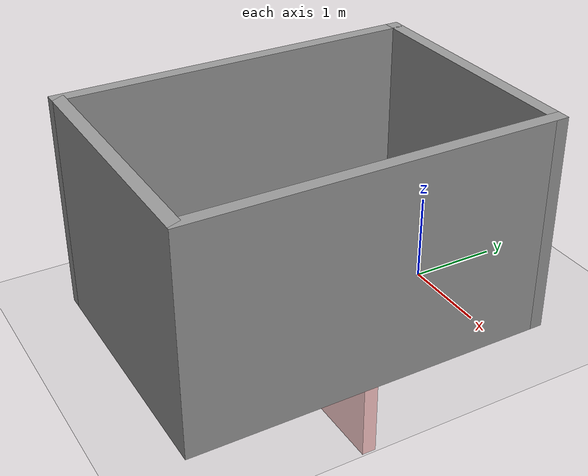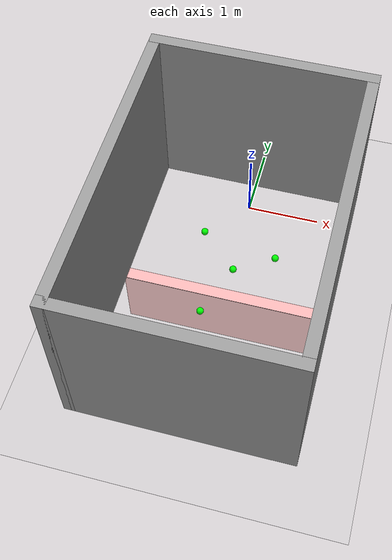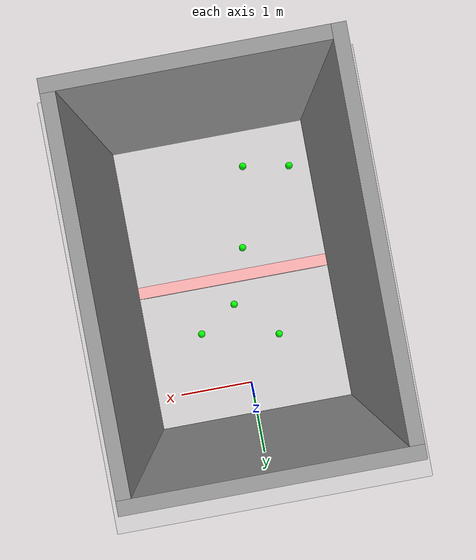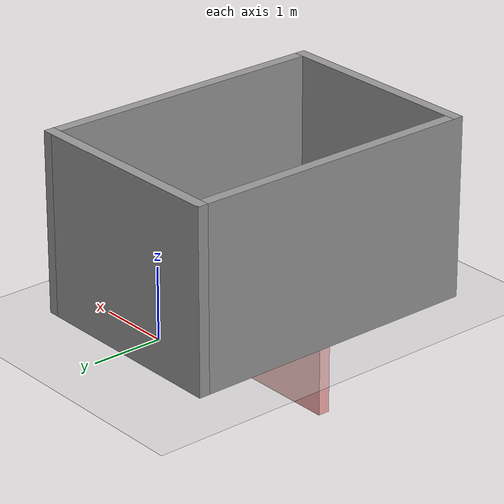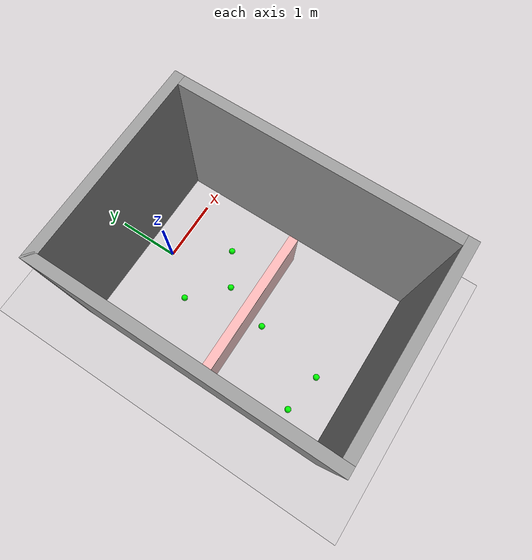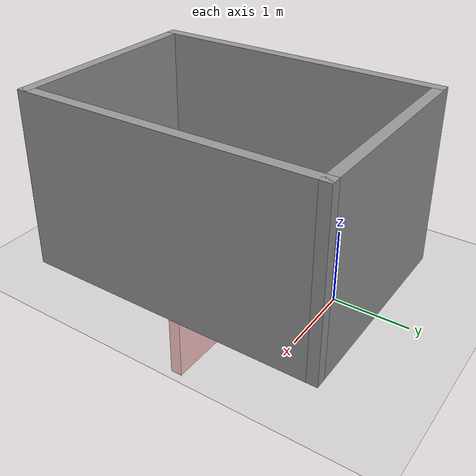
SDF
<sdf version="1.6">
 <world name="default">
  <light name="sun" type="directional">
   <pose>0 0 10 0 -0 0</pose>
   <diffuse>0.8 0.8 0.8 1</diffuse>
   <specular>0.2 0.2 0.2 1</specular>
   <attenuation>
    <range>1000</range>
    <constant>0.9</constant>
    <linear>0.01</linear>
    <quadratic>0.001</quadratic>
   </attenuation>
   <direction>-0.5 0.1 -0.9</direction>
  </light>
  <model name="ground_plane">
   <static>1</static>
   <link name="link">
    <collision name="collision">
     <geometry><plane><normal>0 0 1</normal><size>100 100</size></plane></geometry>
     <surface>
      <contact><collide_bitmask>65535</collide_bitmask></contact>
      <friction><ode><mu>100</mu><mu2>50</mu2></ode></friction>
     </surface>
    </collision>
    <visual name="visual">
     <cast_shadows>0</cast_shadows>
     <geometry><plane><normal>0 0 1</normal><size>100 100</size></plane></geometry>
     <material>
      <script><uri>file://media/materials/scripts/gazebo.material</uri><name>Gazebo/Grey</name></script>
     </material>
    </visual>
   </link>
  </model>
  <gravity>0 0 -9.8</gravity>
  <magnetic_field>6e-06 2.3e-05 -4.2e-05</magnetic_field>
  <atmosphere type="adiabatic"/>
  <physics name="default_physics" default="0" type="ode">
   <max_step_size>0.001</max_step_size>
   <real_time_factor>1</real_time_factor>
   <real_time_update_rate>1000</real_time_update_rate>
  </physics>
  <scene><ambient>0.4 0.4 0.4 1</ambient><background>0.7 0.7 0.7 1</background><shadows>1</shadows></scene>
  <audio><device>default</device></audio>
  <spherical_coordinates>
   <surface_model>EARTH_WGS84</surface_model>
   <latitude_deg>0</latitude_deg>
   <longitude_deg>0</longitude_deg>
   <elevation>0</elevation>
   <heading_deg>0</heading_deg>
  </spherical_coordinates>
  <model name="green_ball">
   <link name="link">
    <inertial>
     <mass>0.0005</mass>
     <inertia><ixx>5e-07</ixx><ixy>0</ixy><ixz>0</ixz><iyy>5e-07</iyy><iyz>0</iyz><izz>5e-07</izz></inertia>
    </inertial>
    <pose>0 0.00285 0 0 -0 0</pose>
    <visual name="visual">
     <geometry><sphere><radius>0.05</radius></sphere></geometry>
     <material>
      <script><name>Gazebo/Grey</name><uri>file://media/materials/scripts/gazebo.material</uri></script>
      <shader type="vertex"><normal_map>__default__</normal_map></shader>
      <ambient>0 1 0 1</ambient>
      <diffuse>0 1 0 1</diffuse>
      <specular>0 0 0 1</specular>
      <emissive>0 0 0 1</emissive>
     </material>
    </visual>
    <collision name="collision">
     <geometry><sphere><radius>0.05</radius></sphere></geometry>
     <surface>
      <friction>
       <ode><mu>0.2</mu><mu2>0.2</mu2><fdir1>0 0 0</fdir1><slip1>0</slip1><slip2>0</slip2></ode>
       <torsional>
        <coefficient>1</coefficient>
        <patch_radius>0</patch_radius>
        <surface_radius>0</surface_radius>
        <use_patch_radius>1</use_patch_radius>
        <ode><slip>0</slip></ode>
       </torsional>
      </friction>
      <bounce><restitution_coefficient>0</restitution_coefficient><threshold>1e+06</threshold></bounce>
      <contact>
       <collide_without_contact>0</collide_without_contact>
       <collide_without_contact_bitmask>1</collide_without_contact_bitmask>
       <collide_bitmask>1</collide_bitmask>
       <ode>
        <soft_cfm>0</soft_cfm>
        <soft_erp>0.2</soft_erp>
        <kp>1e+13</kp>
        <kd>1</kd>
        <max_vel>0.01</max_vel>
        <min_depth>0</min_depth>
       </ode>
       <bullet>
        <split_impulse>1</split_impulse>
        <split_impulse_penetration_threshold>-0.01</split_impulse_penetration_threshold>
        <soft_cfm>0</soft_cfm>
        <soft_erp>0.2</soft_erp>
        <kp>1e+13</kp>
        <kd>1</kd>
       </bullet>
      </contact>
     </surface>
    </collision>
   </link>
   <static>0</static>
   <pose>0.564504 -0.806631 0.05 0 -0 0</pose>
  </model>
  <model name="walls">
   <pose>-0.011081 -1.54825 0 0 -0 0</pose>
   <link name="Wall_1">
    <collision name="Wall_1_Collision">
     <geometry><box><size>3 0.15 2.5</size></box></geometry>
     <pose>0 0 1.25 0 -0 0</pose>
    </collision>
    <visual name="Wall_1_Visual">
     <pose>0 0 1.25 0 -0 0</pose>
     <geometry><box><size>3 0.15 2.5</size></box></geometry>
     <material>
      <script><uri>file://media/materials/scripts/gazebo.material</uri><name>Gazebo/Grey</name></script>
      <ambient>1 1 1 1</ambient>
     </material>
     <meta><layer>0</layer></meta>
    </visual>
    <pose>-0 2.05 0 0 -0 3.14159</pose>
   </link>
   <link name="Wall_3">
    <collision name="Wall_3_Collision">
     <geometry><box><size>4.25 0.15 2.5</size></box></geometry>
     <pose>0 0 1.25 0 -0 0</pose>
    </collision>
    <visual name="Wall_3_Visual">
     <pose>0 0 1.25 0 -0 0</pose>
     <geometry><box><size>4.25 0.15 2.5</size></box></geometry>
     <material>
      <script><uri>file://media/materials/scripts/gazebo.material</uri><name>Gazebo/Grey</name></script>
      <ambient>1 1 1 1</ambient>
     </material>
     <meta><layer>0</layer></meta>
    </visual>
    <pose>-1.425 0 0 0 -0 -1.5708</pose>
   </link>
   <link name="Wall_4">
    <collision name="Wall_4_Collision">
     <geometry><box><size>3 0.15 2.5</size></box></geometry>
     <pose>0 0 1.25 0 -0 0</pose>
    </collision>
    <visual name="Wall_4_Visual">
     <pose>0 0 1.25 0 -0 0</pose>
     <geometry><box><size>3 0.15 2.5</size></box></geometry>
     <material>
      <script><uri>file://media/materials/scripts/gazebo.material</uri><name>Gazebo/Grey</name></script>
      <ambient>1 1 1 1</ambient>
     </material>
     <meta><layer>0</layer></meta>
    </visual>
    <pose>-0 -2.05 0 0 -0 0</pose>
   </link>
   <link name="Wall_5">
    <collision name="Wall_5_Collision">
     <geometry><box><size>4.25 0.15 2.5</size></box></geometry>
     <pose>0 0 1.25 0 -0 0</pose>
    </collision>
    <visual name="Wall_5_Visual">
     <pose>0 0 1.25 0 -0 0</pose>
     <geometry><box><size>4.25 0.15 2.5</size></box></geometry>
     <material>
      <script><uri>file://media/materials/scripts/gazebo.material</uri><name>Gazebo/Grey</name></script>
      <ambient>1 1 1 1</ambient>
     </material>
     <meta><layer>0</layer></meta>
    </visual>
    <pose>1.425 0 0 0 -0 1.5708</pose>
   </link>
   <static>1</static>
  </model>
  <model name="redline">
   <link name="link">
    <inertial>
     <mass>0.442586</mass>
     <inertia>
      <ixx>0.0378504</ixx>
      <ixy>0</ixy>
      <ixz>0</ixz>
      <iyy>0.312525</iyy>
      <iyz>0</iyz>
      <izz>0.276611</izz>
     </inertia>
    </inertial>
    <pose>0 0 -0.498767 0 -0 0</pose>
    <visual name="visual">
     <geometry><box><size>2.73379 0.162025 1</size></box></geometry>
     <material>
      <script><name>Gazebo/Grey</name><uri>file://media/materials/scripts/gazebo.material</uri></script>
      <ambient>1 0 0 0</ambient>
      <shader type="vertex"><normal_map>__default__</normal_map></shader>
      <diffuse>1 0.7 0.7 1</diffuse>
      <specular>1 0.01 0.01 1</specular>
      <emissive>1 0 0 1</emissive>
     </material>
    </visual>
    <collision name="collision">
     <geometry><box><size>2.73379 0.162025 1</size></box></geometry>
     <surface>
      <friction>
       <ode><mu>1</mu><mu2>1</mu2><fdir1>0 0 0</fdir1><slip1>0</slip1><slip2>0</slip2></ode>
       <torsional>
        <coefficient>1</coefficient>
        <patch_radius>0</patch_radius>
        <surface_radius>0</surface_radius>
        <use_patch_radius>1</use_patch_radius>
        <ode><slip>0</slip></ode>
       </torsional>
      </friction>
      <bounce><restitution_coefficient>0</restitution_coefficient><threshold>1e+06</threshold></bounce>
      <contact>
       <collide_without_contact>0</collide_without_contact>
       <collide_without_contact_bitmask>1</collide_without_contact_bitmask>
       <collide_bitmask>1</collide_bitmask>
       <ode>
        <soft_cfm>0</soft_cfm>
        <soft_erp>0.2</soft_erp>
        <kp>1e+13</kp>
        <kd>1</kd>
        <max_vel>0.01</max_vel>
        <min_depth>0</min_depth>
       </ode>
       <bullet>
        <split_impulse>1</split_impulse>
        <split_impulse_penetration_threshold>-0.01</split_impulse_penetration_threshold>
        <soft_cfm>0</soft_cfm>
        <soft_erp>0.2</soft_erp>
        <kp>1e+13</kp>
        <kd>1</kd>
       </bullet>
      </contact>
     </surface>
    </collision>
   </link>
   <static>1</static>
   <pose>-0.021938 -1.52111 0 0 -0 0</pose>
  </model>
  <model name="green_ball_clone">
   <link name="link">
    <inertial>
     <mass>0.0005</mass>
     <inertia><ixx>5e-07</ixx><ixy>0</ixy><ixz>0</ixz><iyy>5e-07</iyy><iyz>0</iyz><izz>5e-07</izz></inertia>
    </inertial>
    <pose>0 0.00285 0 0 -0 0</pose>
    <visual name="visual">
     <geometry><sphere><radius>0.05</radius></sphere></geometry>
     <material>
      <script><name>Gazebo/Grey</name><uri>file://media/materials/scripts/gazebo.material</uri></script>
      <shader type="vertex"><normal_map>__default__</normal_map></shader>
      <ambient>0 1 0 1</ambient>
      <diffuse>0 1 0 1</diffuse>
      <specular>0 0 0 1</specular>
      <emissive>0 0 0 1</emissive>
     </material>
    </visual>
    <collision name="collision">
     <geometry><sphere><radius>0.05</radius></sphere></geometry>
     <surface>
      <friction>
       <ode><mu>0.2</mu><mu2>0.2</mu2><fdir1>0 0 0</fdir1><slip1>0</slip1><slip2>0</slip2></ode>
       <torsional>
        <coefficient>1</coefficient>
        <patch_radius>0</patch_radius>
        <surface_radius>0</surface_radius>
        <use_patch_radius>1</use_patch_radius>
        <ode><slip>0</slip></ode>
       </torsional>
      </friction>
      <bounce><restitution_coefficient>0</restitution_coefficient><threshold>1e+06</threshold></bounce>
      <contact>
       <collide_without_contact>0</collide_without_contact>
       <collide_without_contact_bitmask>1</collide_without_contact_bitmask>
       <collide_bitmask>1</collide_bitmask>
       <ode>
        <soft_cfm>0</soft_cfm>
        <soft_erp>0.2</soft_erp>
        <kp>1e+13</kp>
        <kd>1</kd>
        <max_vel>0.01</max_vel>
        <min_depth>0</min_depth>
       </ode>
       <bullet>
        <split_impulse>1</split_impulse>
        <split_impulse_penetration_threshold>-0.01</split_impulse_penetration_threshold>
        <soft_cfm>0</soft_cfm>
        <soft_erp>0.2</soft_erp>
        <kp>1e+13</kp>
        <kd>1</kd>
       </bullet>
      </contact>
     </surface>
    </collision>
   </link>
   <static>0</static>
   <pose>0.038962 -1.13483 0.05 0 -0 0</pose>
  </model>
  <model name="green_ball_clone_0">
   <link name="link">
    <inertial>
     <mass>0.0005</mass>
     <inertia><ixx>5e-07</ixx><ixy>0</ixy><ixz>0</ixz><iyy>5e-07</iyy><iyz>0</iyz><izz>5e-07</izz></inertia>
    </inertial>
    <pose>0 0.00285 0 0 -0 0</pose>
    <visual name="visual">
     <geometry><sphere><radius>0.05</radius></sphere></geometry>
     <material>
      <script><name>Gazebo/Grey</name><uri>file://media/materials/scripts/gazebo.material</uri></script>
      <shader type="vertex"><normal_map>__default__</normal_map></shader>
      <ambient>0 1 0 1</ambient>
      <diffuse>0 1 0 1</diffuse>
      <specular>0 0 0 1</specular>
      <emissive>0 0 0 1</emissive>
     </material>
    </visual>
    <collision name="collision">
     <geometry><sphere><radius>0.05</radius></sphere></geometry>
     <surface>
      <friction>
       <ode><mu>0.2</mu><mu2>0.2</mu2><fdir1>0 0 0</fdir1><slip1>0</slip1><slip2>0</slip2></ode>
       <torsional>
        <coefficient>1</coefficient>
        <patch_radius>0</patch_radius>
        <surface_radius>0</surface_radius>
        <use_patch_radius>1</use_patch_radius>
        <ode><slip>0</slip></ode>
       </torsional>
      </friction>
      <bounce><restitution_coefficient>0</restitution_coefficient><threshold>1e+06</threshold></bounce>
      <contact>
       <collide_without_contact>0</collide_without_contact>
       <collide_without_contact_bitmask>1</collide_without_contact_bitmask>
       <collide_bitmask>1</collide_bitmask>
       <ode>
        <soft_cfm>0</soft_cfm>
        <soft_erp>0.2</soft_erp>
        <kp>1e+13</kp>
        <kd>1</kd>
        <max_vel>0.01</max_vel>
        <min_depth>0</min_depth>
       </ode>
       <bullet>
        <split_impulse>1</split_impulse>
        <split_impulse_penetration_threshold>-0.01</split_impulse_penetration_threshold>
        <soft_cfm>0</soft_cfm>
        <soft_erp>0.2</soft_erp>
        <kp>1e+13</kp>
        <kd>1</kd>
       </bullet>
      </contact>
     </surface>
    </collision>
   </link>
   <static>0</static>
   <pose>-0.508284 -0.611897 0.05 0 -0 0</pose>
  </model>
  <model name="green_ball_clone_0_clone">
   <link name="link">
    <inertial>
     <mass>0.0005</mass>
     <inertia><ixx>5e-07</ixx><ixy>0</ixy><ixz>0</ixz><iyy>5e-07</iyy><iyz>0</iyz><izz>5e-07</izz></inertia>
    </inertial>
    <pose>0 0.00285 0 0 -0 0</pose>
    <visual name="visual">
     <geometry><sphere><radius>0.05</radius></sphere></geometry>
     <material>
      <script><name>Gazebo/Grey</name><uri>file://media/materials/scripts/gazebo.material</uri></script>
      <shader type="vertex"><normal_map>__default__</normal_map></shader>
      <ambient>0 1 0 1</ambient>
      <diffuse>0 1 0 1</diffuse>
      <specular>0 0 0 1</specular>
      <emissive>0 0 0 1</emissive>
     </material>
    </visual>
    <collision name="collision">
     <geometry><sphere><radius>0.05</radius></sphere></geometry>
     <surface>
      <friction>
       <ode><mu>0.2</mu><mu2>0.2</mu2><fdir1>0 0 0</fdir1><slip1>0</slip1><slip2>0</slip2></ode>
       <torsional>
        <coefficient>1</coefficient>
        <patch_radius>0</patch_radius>
        <surface_radius>0</surface_radius>
        <use_patch_radius>1</use_patch_radius>
        <ode><slip>0</slip></ode>
       </torsional>
      </friction>
      <bounce><restitution_coefficient>0</restitution_coefficient><threshold>1e+06</threshold></bounce>
      <contact>
       <collide_without_contact>0</collide_without_contact>
       <collide_without_contact_bitmask>1</collide_without_contact_bitmask>
       <collide_bitmask>1</collide_bitmask>
       <ode>
        <soft_cfm>0</soft_cfm>
        <soft_erp>0.2</soft_erp>
        <kp>1e+13</kp>
        <kd>1</kd>
        <max_vel>0.01</max_vel>
        <min_depth>0</min_depth>
       </ode>
       <bullet>
        <split_impulse>1</split_impulse>
        <split_impulse_penetration_threshold>-0.01</split_impulse_penetration_threshold>
        <soft_cfm>0</soft_cfm>
        <soft_erp>0.2</soft_erp>
        <kp>1e+13</kp>
        <kd>1</kd>
       </bullet>
      </contact>
     </surface>
    </collision>
   </link>
   <static>0</static>
   <pose>-1.07513 -2.91089 0.05 0 -0 0</pose>
  </model>
  <model name="green_ball_clone_0_clone_0">
   <link name="link">
    <inertial>
     <mass>0.0005</mass>
     <inertia><ixx>5e-07</ixx><ixy>0</ixy><ixz>0</ixz><iyy>5e-07</iyy><iyz>0</iyz><izz>5e-07</izz></inertia>
    </inertial>
    <pose>0 0.00285 0 0 -0 0</pose>
    <visual name="visual">
     <geometry><sphere><radius>0.05</radius></sphere></geometry>
     <material>
      <script><name>Gazebo/Grey</name><uri>file://media/materials/scripts/gazebo.material</uri></script>
      <shader type="vertex"><normal_map>__default__</normal_map></shader>
      <ambient>0 1 0 1</ambient>
      <diffuse>0 1 0 1</diffuse>
      <specular>0 0 0 1</specular>
      <emissive>0 0 0 1</emissive>
     </material>
    </visual>
    <collision name="collision">
     <geometry><sphere><radius>0.05</radius></sphere></geometry>
     <surface>
      <friction>
       <ode><mu>0.2</mu><mu2>0.2</mu2><fdir1>0 0 0</fdir1><slip1>0</slip1><slip2>0</slip2></ode>
       <torsional>
        <coefficient>1</coefficient>
        <patch_radius>0</patch_radius>
        <surface_radius>0</surface_radius>
        <use_patch_radius>1</use_patch_radius>
        <ode><slip>0</slip></ode>
       </torsional>
      </friction>
      <bounce><restitution_coefficient>0</restitution_coefficient><threshold>1e+06</threshold></bounce>
      <contact>
       <collide_without_contact>0</collide_without_contact>
       <collide_without_contact_bitmask>1</collide_without_contact_bitmask>
       <collide_bitmask>1</collide_bitmask>
       <ode>
        <soft_cfm>0</soft_cfm>
        <soft_erp>0.2</soft_erp>
        <kp>1e+13</kp>
        <kd>1</kd>
        <max_vel>0.01</max_vel>
        <min_depth>0</min_depth>
       </ode>
       <bullet>
        <split_impulse>1</split_impulse>
        <split_impulse_penetration_threshold>-0.01</split_impulse_penetration_threshold>
        <soft_cfm>0</soft_cfm>
        <soft_erp>0.2</soft_erp>
        <kp>1e+13</kp>
        <kd>1</kd>
       </bullet>
      </contact>
     </surface>
    </collision>
   </link>
   <static>0</static>
   <pose>-0.434531 -3.01947 0.05 0 -0 0</pose>
  </model>
  <model name="green_ball_clone_0_clone_1">
   <link name="link">
    <inertial>
     <mass>0.0005</mass>
     <inertia><ixx>5e-07</ixx><ixy>0</ixy><ixz>0</ixz><iyy>5e-07</iyy><iyz>0</iyz><izz>5e-07</izz></inertia>
    </inertial>
    <pose>0 0.00285 0 0 -0 0</pose>
    <visual name="visual">
     <geometry><sphere><radius>0.05</radius></sphere></geometry>
     <material>
      <script><name>Gazebo/Grey</name><uri>file://media/materials/scripts/gazebo.material</uri></script>
      <shader type="vertex"><normal_map>__default__</normal_map></shader>
      <ambient>0 1 0 1</ambient>
      <diffuse>0 1 0 1</diffuse>
      <specular>0 0 0 1</specular>
      <emissive>0 0 0 1</emissive>
     </material>
    </visual>
    <collision name="collision">
     <geometry><sphere><radius>0.05</radius></sphere></geometry>
     <surface>
      <friction>
       <ode><mu>0.2</mu><mu2>0.2</mu2><fdir1>0 0 0</fdir1><slip1>0</slip1><slip2>0</slip2></ode>
       <torsional>
        <coefficient>1</coefficient>
        <patch_radius>0</patch_radius>
        <surface_radius>0</surface_radius>
        <use_patch_radius>1</use_patch_radius>
        <ode><slip>0</slip></ode>
       </torsional>
      </friction>
      <bounce><restitution_coefficient>0</restitution_coefficient><threshold>1e+06</threshold></bounce>
      <contact>
       <collide_without_contact>0</collide_without_contact>
       <collide_without_contact_bitmask>1</collide_without_contact_bitmask>
       <collide_bitmask>1</collide_bitmask>
       <ode>
        <soft_cfm>0</soft_cfm>
        <soft_erp>0.2</soft_erp>
        <kp>1e+13</kp>
        <kd>1</kd>
        <max_vel>0.01</max_vel>
        <min_depth>0</min_depth>
       </ode>
       <bullet>
        <split_impulse>1</split_impulse>
        <split_impulse_penetration_threshold>-0.01</split_impulse_penetration_threshold>
        <soft_cfm>0</soft_cfm>
        <soft_erp>0.2</soft_erp>
        <kp>1e+13</kp>
        <kd>1</kd>
       </bullet>
      </contact>
     </surface>
    </collision>
   </link>
   <static>0</static>
   <pose>-0.222805 -1.8957 0.05 0 -0 0</pose>
  </model>
 </world>
</sdf>
